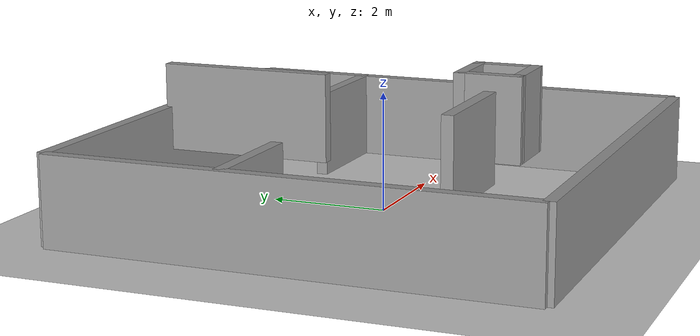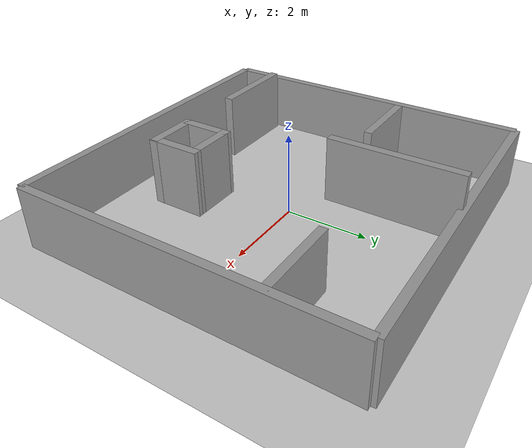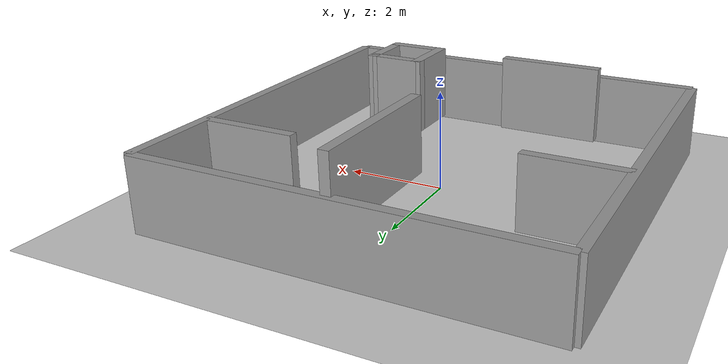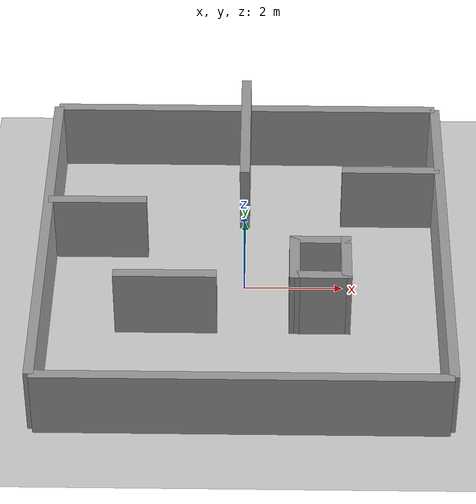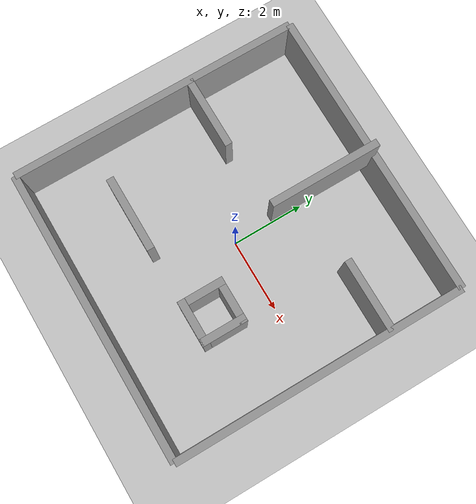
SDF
<sdf version="1.4">
 <world name="default">
  <light name="sun" type="directional">
   <pose>0 0 10 0 -0 0</pose>
   <diffuse>0.8 0.8 0.8 1</diffuse>
   <specular>0.2 0.2 0.2 1</specular>
   <attenuation>
    <range>1000</range>
    <constant>0.9</constant>
    <linear>0.01</linear>
    <quadratic>0.001</quadratic>
   </attenuation>
   <direction>-0.5 0.1 -0.9</direction>
  </light>
  <model name="ground_plane">
   <static>1</static>
   <link name="link">
    <collision name="collision">
     <geometry><plane><normal>0 0 1</normal><size>100 100</size></plane></geometry>
     <surface><friction><ode><mu>100</mu><mu2>50</mu2></ode></friction></surface>
    </collision>
    <visual name="visual">
     <cast_shadows>0</cast_shadows>
     <geometry><plane><normal>0 0 1</normal><size>100 100</size></plane></geometry>
     <material>
      <script><uri>file://media/materials/scripts/gazebo.material</uri><name>Gazebo/Grey</name></script>
     </material>
    </visual>
    <velocity_decay><linear>0</linear><angular>0</angular></velocity_decay>
   </link>
  </model>
  <physics type="ode">
   <max_step_size>0.001</max_step_size>
   <real_time_factor>1</real_time_factor>
   <real_time_update_rate>1000</real_time_update_rate>
   <gravity>0 0 -9.8</gravity>
  </physics>
  <scene><ambient>0.4 0.4 0.4 1</ambient><background>0.7 0.7 0.7 1</background><shadows>1</shadows></scene>
  <spherical_coordinates>
   <surface_model>EARTH_WGS84</surface_model>
   <latitude_deg>0</latitude_deg>
   <longitude_deg>0</longitude_deg>
   <elevation>0</elevation>
   <heading_deg>0</heading_deg>
  </spherical_coordinates>
  <model name="grey_wall">
   <static>1</static>
   <link name="link">
    <pose>0 0 0.75 0 -0 0</pose>
    <collision name="collision"><geometry><box><size>8 0.2 1.5</size></box></geometry></collision>
    <visual name="visual">
     <cast_shadows>0</cast_shadows>
     <geometry><box><size>8 0.2 1.5</size></box></geometry>
     <material>
      <script>
       <uri>model://grey_wall/materials/scripts</uri>
       <uri>model://grey_wall/materials/textures</uri>
       <name>vrc/grey_wall</name>
      </script>
     </material>
    </visual>
    <velocity_decay><linear>0</linear><angular>0</angular></velocity_decay>
   </link>
   <pose>-4 0 0 0 -0 -1.57102</pose>
  </model>
  <model name="grey_wall_0">
   <static>1</static>
   <link name="link">
    <pose>0 0 0.75 0 -0 0</pose>
    <collision name="collision"><geometry><box><size>8 0.2 1.5</size></box></geometry></collision>
    <visual name="visual">
     <cast_shadows>0</cast_shadows>
     <geometry><box><size>8 0.2 1.5</size></box></geometry>
     <material>
      <script>
       <uri>model://grey_wall/materials/scripts</uri>
       <uri>model://grey_wall/materials/textures</uri>
       <name>vrc/grey_wall</name>
      </script>
     </material>
    </visual>
    <velocity_decay><linear>0</linear><angular>0</angular></velocity_decay>
   </link>
   <pose>4 0 0 0 -0 -1.57102</pose>
  </model>
  <model name="grey_wall_1">
   <static>1</static>
   <link name="link">
    <pose>0 0 0.75 0 -0 0</pose>
    <collision name="collision"><geometry><box><size>8 0.2 1.5</size></box></geometry></collision>
    <visual name="visual">
     <cast_shadows>0</cast_shadows>
     <geometry><box><size>8 0.2 1.5</size></box></geometry>
     <material>
      <script>
       <uri>model://grey_wall/materials/scripts</uri>
       <uri>model://grey_wall/materials/textures</uri>
       <name>vrc/grey_wall</name>
      </script>
     </material>
    </visual>
    <velocity_decay><linear>0</linear><angular>0</angular></velocity_decay>
   </link>
   <pose>0 4 0 0 0 0</pose>
  </model>
  <model name="grey_wall_2">
   <static>1</static>
   <link name="link">
    <pose>0 0 0.75 0 -0 0</pose>
    <collision name="collision"><geometry><box><size>8 0.2 1.5</size></box></geometry></collision>
    <visual name="visual">
     <cast_shadows>0</cast_shadows>
     <geometry><box><size>8 0.2 1.5</size></box></geometry>
     <material>
      <script>
       <uri>model://grey_wall/materials/scripts</uri>
       <uri>model://grey_wall/materials/textures</uri>
       <name>vrc/grey_wall</name>
      </script>
     </material>
    </visual>
    <velocity_decay><linear>0</linear><angular>0</angular></velocity_decay>
   </link>
   <pose>0 -4 0 0 -0 0</pose>
  </model>
  <model name="grey_wall_3">
   <static>1</static>
   <link name="link">
    <pose>0 0 0.75 0 -0 0</pose>
    <collision name="collision"><geometry><box><size>3 0.2 1.5</size></box></geometry></collision>
    <visual name="visual">
     <cast_shadows>0</cast_shadows>
     <geometry><box><size>3 0.2 1.5</size></box></geometry>
     <material>
      <script>
       <uri>model://grey_wall/materials/scripts</uri>
       <uri>model://grey_wall/materials/textures</uri>
       <name>vrc/grey_wall</name>
      </script>
     </material>
    </visual>
    <velocity_decay><linear>0</linear><angular>0</angular></velocity_decay>
   </link>
   <pose>0 2.5 0.75 0 0 -1.57102</pose>
  </model>
  <model name="grey_wall_4">
   <static>1</static>
   <link name="link">
    <pose>0 0 0.75 0 -0 0</pose>
    <collision name="collision"><geometry><box><size>2 0.2 1.5</size></box></geometry></collision>
    <visual name="visual">
     <cast_shadows>0</cast_shadows>
     <geometry><box><size>2 0.2 1.5</size></box></geometry>
     <material>
      <script>
       <uri>model://grey_wall/materials/scripts</uri>
       <uri>model://grey_wall/materials/textures</uri>
       <name>vrc/grey_wall</name>
      </script>
     </material>
    </visual>
    <velocity_decay><linear>0</linear><angular>0</angular></velocity_decay>
   </link>
   <pose>-3 1 0 0 -0 0</pose>
  </model>
  <model name="grey_wall_5">
   <static>1</static>
   <link name="link">
    <pose>0 0 0.75 0 -0 0</pose>
    <collision name="collision"><geometry><box><size>2 0.2 1.5</size></box></geometry></collision>
    <visual name="visual">
     <cast_shadows>0</cast_shadows>
     <geometry><box><size>2 0.2 1.5</size></box></geometry>
     <material>
      <script>
       <uri>model://grey_wall/materials/scripts</uri>
       <uri>model://grey_wall/materials/textures</uri>
       <name>vrc/grey_wall</name>
      </script>
     </material>
    </visual>
    <velocity_decay><linear>0</linear><angular>0</angular></velocity_decay>
   </link>
   <pose>3 2 0 0 -0 0</pose>
  </model>
  <model name="grey_wall_6">
   <static>1</static>
   <link name="link">
    <pose>0 0 0.75 0 -0 0</pose>
    <collision name="collision"><geometry><box><size>1.2 0.2 1.5</size></box></geometry></collision>
    <visual name="visual">
     <cast_shadows>0</cast_shadows>
     <geometry><box><size>1.2 0.2 1.5</size></box></geometry>
     <material>
      <script>
       <uri>model://grey_wall/materials/scripts</uri>
       <uri>model://grey_wall/materials/textures</uri>
       <name>vrc/grey_wall</name>
      </script>
     </material>
    </visual>
    <velocity_decay><linear>0</linear><angular>0</angular></velocity_decay>
   </link>
   <pose>1 -1.5 0.75 0 -0 -1.57102</pose>
  </model>
  <model name="grey_wall_7">
   <static>1</static>
   <link name="link">
    <pose>0 0 0.75 0 -0 0</pose>
    <collision name="collision"><geometry><box><size>1.2 0.2 1.5</size></box></geometry></collision>
    <visual name="visual">
     <cast_shadows>0</cast_shadows>
     <geometry><box><size>1.2 0.2 1.5</size></box></geometry>
     <material>
      <script>
       <uri>model://grey_wall/materials/scripts</uri>
       <uri>model://grey_wall/materials/textures</uri>
       <name>vrc/grey_wall</name>
      </script>
     </material>
    </visual>
    <velocity_decay><linear>0</linear><angular>0</angular></velocity_decay>
   </link>
   <pose>2 -1.5 0.75 0 -0 -1.57102</pose>
  </model>
  <model name="grey_wall_8">
   <static>1</static>
   <link name="link">
    <pose>0 0 0.75 0 -0 0</pose>
    <collision name="collision"><geometry><box><size>1.2 0.2 1.5</size></box></geometry></collision>
    <visual name="visual">
     <cast_shadows>0</cast_shadows>
     <geometry><box><size>1.2 0.2 1.5</size></box></geometry>
     <material>
      <script>
       <uri>model://grey_wall/materials/scripts</uri>
       <uri>model://grey_wall/materials/textures</uri>
       <name>vrc/grey_wall</name>
      </script>
     </material>
    </visual>
    <velocity_decay><linear>0</linear><angular>0</angular></velocity_decay>
   </link>
   <pose>1.5 -1 0.75 0 -0 0</pose>
  </model>
  <model name="grey_wall_9">
   <static>1</static>
   <link name="link">
    <pose>0 0 0.75 0 -0 0</pose>
    <collision name="collision"><geometry><box><size>1.2 0.2 1.5</size></box></geometry></collision>
    <visual name="visual">
     <cast_shadows>0</cast_shadows>
     <geometry><box><size>1.2 0.2 1.5</size></box></geometry>
     <material>
      <script>
       <uri>model://grey_wall/materials/scripts</uri>
       <uri>model://grey_wall/materials/textures</uri>
       <name>vrc/grey_wall</name>
      </script>
     </material>
    </visual>
    <velocity_decay><linear>0</linear><angular>0</angular></velocity_decay>
   </link>
   <pose>1.5 -2 0.75 0 -0 0</pose>
  </model>
  <model name="grey_wall_10">
   <static>1</static>
   <link name="link">
    <pose>0 0 0.75 0 -0 0</pose>
    <collision name="collision"><geometry><box><size>2 0.2 1.5</size></box></geometry></collision>
    <visual name="visual">
     <cast_shadows>0</cast_shadows>
     <geometry><box><size>2 0.2 1.5</size></box></geometry>
     <material>
      <script>
       <uri>model://grey_wall/materials/scripts</uri>
       <uri>model://grey_wall/materials/textures</uri>
       <name>vrc/grey_wall</name>
      </script>
     </material>
    </visual>
    <velocity_decay><linear>0</linear><angular>0</angular></velocity_decay>
   </link>
   <pose>-1.5 -2 0.75 0 -0 0</pose>
  </model>
 </world>
</sdf>
